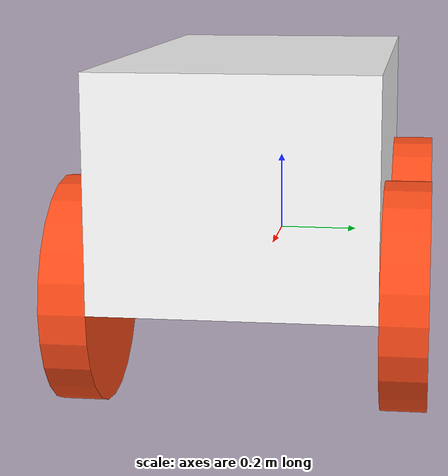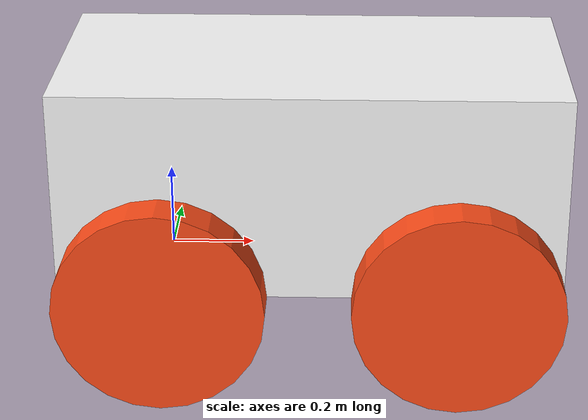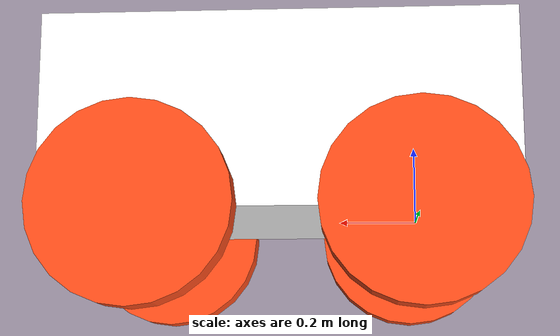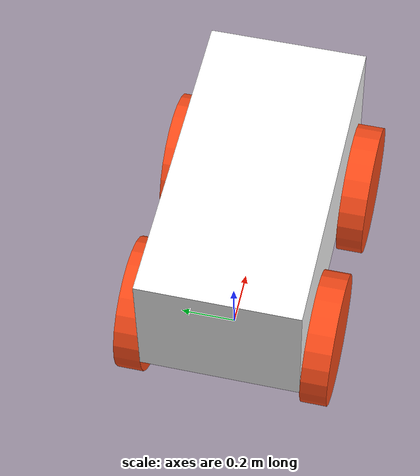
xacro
<?xml version="1.0"?>
<robot xmlns:xacro="http://www.ros.org/wiki/xacro" >

    <xacro:include filename="inertial_macros.xacro"/>

    <!-- friction constant -->
    <xacro:property name="friction_constant" value="0.2"/>

    <material name="white">
        <color rgba="1 1 1 1"/>
    </material>

    <material name="orange">
        <color rgba="1 0.3 0.1 1"/>
    </material>

    <material name="blue">
        <color rgba="0.2 0.2 1 1"/>
    </material>

    <material name="black">
        <color rgba="0 0 0 1"/>
    </material>

    <material name="red">
        <color rgba="1 0 0 1"/>
    </material>

<!-- BASE LINK-->
    <link name="base_link">

    </link>

<!-- CHASSIS LINK-->
    <joint name="chassis_joint" type="fixed">
        <parent link="base_link"/>
        <child link="chassis"/>
        <origin xyz="-0.25 0 0"/>
    </joint>

    <link name="chassis">
        <visual>
            <origin xyz="0.6 0 0.25"/>
            <geometry>
                <box size="1.2 0.6 0.5"/>
            </geometry>
            <material name="white"/>
        </visual>
        <collision>
            <origin xyz="0.6 0 0.25"/>
            <geometry>
                <box size="1.2 0.6 0.5"/>
            </geometry>
        </collision>
        <xacro:inertial_box mass="35" x="1.2" y="0.6" z="0.5">
            <origin xyz="0.6 0 0.25" rpy="0 0 0"/>
        </xacro:inertial_box>
    </link>

    <gazebo reference="chassis">
        <material>Gazebo/White</material>
    </gazebo>

<!-- BACK LEFT WHEEL LINK -->
    <joint name="lb_wheel_joint" type="continuous">
        <parent link="base_link"/>
        <child link="lb_wheel"/>
        <origin xyz="0 0.35 0" rpy="-${pi/2} 0 0"/>
        <axis xyz="0 0 1"/>
        <limit effort="1000" velocity="1000"/>
    </joint>

    <link name="lb_wheel">
        <visual>
            <geometry>
                <cylinder radius="0.25" length="0.1"/>
            </geometry>
            <material name="orange"/>
        </visual>
        <collision>
            <geometry>
                <cylinder radius="0.25" length="0.1"/>
            </geometry>
        </collision>
        <xacro:inertial_cylinder mass="2.5" length="0.1" radius="0.25">
            <origin xyz="0 0 0" rpy="0 0 0"/>
        </xacro:inertial_cylinder>
    </link>

    <gazebo reference="lb_wheel">
        <material>Gazebo/Orange</material>
    </gazebo>

<!-- BACK RIGHT WHEEL LINK -->
<joint name="rb_wheel_joint" type="continuous">
    <parent link="base_link"/>
    <child link="rb_wheel"/>
    <origin xyz="0 -0.35 0" rpy="${pi/2} 0 0"/>
    <axis xyz="0 0 -1"/>
    <limit effort="1000" velocity="1000"/>
</joint>

<link name="rb_wheel">
    <visual>
        <geometry>
            <cylinder radius="0.25" length="0.1"/>
        </geometry>
        <material name="orange"/>
    </visual>
    <collision>
        <geometry>
            <cylinder radius="0.25" length="0.1"/>
        </geometry>
    </collision>
    <xacro:inertial_cylinder mass="2.5" length="0.1" radius="0.25">
            <origin xyz="0 0 0" rpy="0 0 0"/>
    </xacro:inertial_cylinder>
</link>

<gazebo reference="rb_wheel">
    <material>Gazebo/Orange</material>
</gazebo>

<!-- FRONT LEFT WHEEL LINK -->
<joint name="lf_wheel_joint" type="continuous">
    <parent link="base_link"/>
    <child link="lf_wheel"/>
    <origin xyz="0.7 0.35 0" rpy="-${pi/2} 0 0"/>
    <axis xyz="0 0 1"/>
    <limit effort="1000" velocity="1000"/>
</joint>

<link name="lf_wheel">
    <visual>
        <geometry>
            <cylinder radius="0.25" length="0.1"/>
        </geometry>
        <material name="orange"/>
    </visual>
    <collision>
        <geometry>
            <cylinder radius="0.25" length="0.1"/>
        </geometry>
    </collision>
    <xacro:inertial_cylinder mass="2.5" length="0.1" radius="0.25">
            <origin xyz="0 0 0" rpy="0 0 0"/>
    </xacro:inertial_cylinder>
</link>

<gazebo reference="lf_wheel">
    <material>Gazebo/Orange</material>
</gazebo>

<!-- FRONT RIGHT WHEEL LINK -->
<joint name="rf_wheel_joint" type="continuous">
    <parent link="base_link"/>
    <child link="rf_wheel"/>
    <origin xyz="0.7 -0.35 0" rpy="${pi/2} 0 0"/>
    <axis xyz="0 0 -1"/>
    <limit effort="1000" velocity="1000"/>
</joint>

<link name="rf_wheel">
    <visual>
        <geometry>
            <cylinder radius="0.25" length="0.1"/>
        </geometry>
        <material name="orange"/>
    </visual>
    <collision>
        <geometry>
            <cylinder radius="0.25" length="0.1"/>
        </geometry>
    </collision>
    <xacro:inertial_cylinder mass="2.5" length="0.1" radius="0.25">
            <origin xyz="0 0 0" rpy="0 0 0"/>
    </xacro:inertial_cylinder>
</link>

<gazebo reference="rf_wheel">
    <material>Gazebo/Orange</material>
</gazebo>

</robot>
